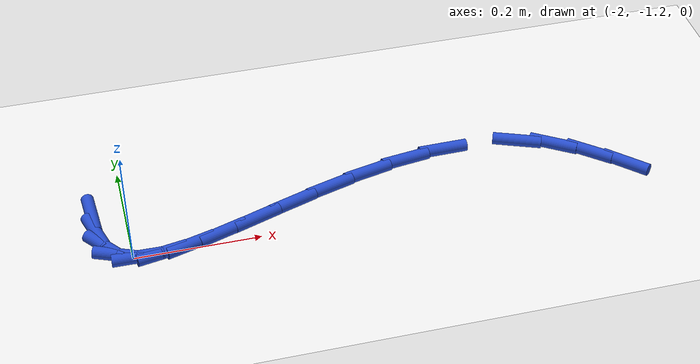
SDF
<sdf version="1.6">
 <world name="default">
  <model name="ground_plane">
   <static>1</static>
   <link name="link">
    <collision name="collision">
     <geometry><plane><normal>0 0 1</normal><size>100 100</size></plane></geometry>
     <surface><friction><ode><mu>100</mu><mu2>50</mu2></ode></friction></surface>
    </collision>
    <visual name="visual">
     <cast_shadows>0</cast_shadows>
     <geometry><plane><normal>0 0 1</normal><size>100 100</size></plane></geometry>
     <material>
      <script><uri>file://media/materials/scripts/gazebo.material</uri><name>Gazebo/WhiteGlow</name></script>
     </material>
    </visual>
   </link>
  </model>
  <model name="line">
   <link name="link_88">
    <pose>-2.050636031580349 -1.0965031979337472 0.01 0 1.57 -1.5076308698504028</pose>
    <collision name="collision">
     <geometry><cylinder><radius>0.01</radius><length>0.08</length></cylinder></geometry>
    </collision>
    <visual name="visual">
     <material>
      <script><name>Gazebo/Blue</name><uri>file://media/materials/scripts/gazebo.material</uri></script>
     </material>
     <geometry><cylinder><radius>0.01</radius><length>0.08</length></cylinder></geometry>
    </visual>
   </link>
   <link name="link_89">
    <pose>-2.0479079111940015 -1.1396358097485104 0.01 0 1.57 -1.2949432404691255</pose>
    <collision name="collision">
     <geometry><cylinder><radius>0.01</radius><length>0.08</length></cylinder></geometry>
    </collision>
    <visual name="visual">
     <material>
      <script><name>Gazebo/Blue</name><uri>file://media/materials/scripts/gazebo.material</uri></script>
     </material>
     <geometry><cylinder><radius>0.01</radius><length>0.08</length></cylinder></geometry>
    </visual>
   </link>
   <link name="link_90">
    <pose>-2.0383574839887824 -1.1733745766124646 0.01 0 1.57 -0.9160419724431071</pose>
    <collision name="collision">
     <geometry><cylinder><radius>0.01</radius><length>0.08</length></cylinder></geometry>
    </collision>
    <visual name="visual">
     <material>
      <script><name>Gazebo/Blue</name><uri>file://media/materials/scripts/gazebo.material</uri></script>
     </material>
     <geometry><cylinder><radius>0.01</radius><length>0.08</length></cylinder></geometry>
    </visual>
   </link>
   <link name="link_91">
    <pose>-2.0205552815480616 -1.1965625705804352 0.01 0 1.57 -0.39927069895030376</pose>
    <collision name="collision">
     <geometry><cylinder><radius>0.01</radius><length>0.08</length></cylinder></geometry>
    </collision>
    <visual name="visual">
     <material>
      <script><name>Gazebo/Blue</name><uri>file://media/materials/scripts/gazebo.material</uri></script>
     </material>
     <geometry><cylinder><radius>0.01</radius><length>0.08</length></cylinder></geometry>
    </visual>
   </link>
   <link name="link_92">
    <pose>-1.9931426326123498 -1.2081288941791408 0.01 0 1.57 -0.014847775576690255</pose>
    <collision name="collision">
     <geometry><cylinder><radius>0.01</radius><length>0.08</length></cylinder></geometry>
    </collision>
    <visual name="visual">
     <material>
      <script><name>Gazebo/Blue</name><uri>file://media/materials/scripts/gazebo.material</uri></script>
     </material>
     <geometry><cylinder><radius>0.01</radius><length>0.08</length></cylinder></geometry>
    </visual>
   </link>
   <link name="link_93">
    <pose>-1.9561398464917816 -1.2086783436203206 0.01 0 1.57 0.18198586436823372</pose>
    <collision name="collision">
     <geometry><cylinder><radius>0.01</radius><length>0.08</length></cylinder></geometry>
    </collision>
    <visual name="visual">
     <material>
      <script><name>Gazebo/Blue</name><uri>file://media/materials/scripts/gazebo.material</uri></script>
     </material>
     <geometry><cylinder><radius>0.01</radius><length>0.08</length></cylinder></geometry>
    </visual>
   </link>
   <link name="link_94">
    <pose>-1.9108204469783474 -1.2003385818184567 0.01 0 1.57 0.2800348995322928</pose>
    <collision name="collision">
     <geometry><cylinder><radius>0.01</radius><length>0.08</length></cylinder></geometry>
    </collision>
    <visual name="visual">
     <material>
      <script><name>Gazebo/Blue</name><uri>file://media/materials/scripts/gazebo.material</uri></script>
     </material>
     <geometry><cylinder><radius>0.01</radius><length>0.08</length></cylinder></geometry>
    </visual>
   </link>
   <link name="link_95">
    <pose>-1.8585035296682855 -1.1852926491068867 0.01 0 1.57 0.3254283040956408</pose>
    <collision name="collision">
     <geometry><cylinder><radius>0.01</radius><length>0.08</length></cylinder></geometry>
    </collision>
    <visual name="visual">
     <material>
      <script><name>Gazebo/Blue</name><uri>file://media/materials/scripts/gazebo.material</uri></script>
     </material>
     <geometry><cylinder><radius>0.01</radius><length>0.08</length></cylinder></geometry>
    </visual>
   </link>
   <link name="link_96">
    <pose>-1.800508190157837 -1.1657235858189499 0.01 0 1.57 0.33788899911484505</pose>
    <collision name="collision">
     <geometry><cylinder><radius>0.01</radius><length>0.08</length></cylinder></geometry>
    </collision>
    <visual name="visual">
     <material>
      <script><name>Gazebo/Blue</name><uri>file://media/materials/scripts/gazebo.material</uri></script>
     </material>
     <geometry><cylinder><radius>0.01</radius><length>0.08</length></cylinder></geometry>
    </visual>
   </link>
   <link name="link_97">
    <pose>-1.7381535240432426 -1.1438144322879849 0.01 0 1.57 0.3254330573580249</pose>
    <collision name="collision">
     <geometry><cylinder><radius>0.01</radius><length>0.08</length></cylinder></geometry>
    </collision>
    <visual name="visual">
     <material>
      <script><name>Gazebo/Blue</name><uri>file://media/materials/scripts/gazebo.material</uri></script>
     </material>
     <geometry><cylinder><radius>0.01</radius><length>0.08</length></cylinder></geometry>
    </visual>
   </link>
   <link name="link_98">
    <pose>-1.6727586269207408 -1.1217482288473295 0.01 0 1.57 0.2901632192983398</pose>
    <collision name="collision">
     <geometry><cylinder><radius>0.01</radius><length>0.08</length></cylinder></geometry>
    </collision>
    <visual name="visual">
     <material>
      <script><name>Gazebo/Blue</name><uri>file://media/materials/scripts/gazebo.material</uri></script>
     </material>
     <geometry><cylinder><radius>0.01</radius><length>0.08</length></cylinder></geometry>
    </visual>
   </link>
   <link name="link_99">
    <pose>-1.6056425943865724 -1.101708015830323 0.01 0 1.57 0.23031272489078133</pose>
    <collision name="collision">
     <geometry><cylinder><radius>0.01</radius><length>0.08</length></cylinder></geometry>
    </collision>
    <visual name="visual">
     <material>
      <script><name>Gazebo/Blue</name><uri>file://media/materials/scripts/gazebo.material</uri></script>
     </material>
     <geometry><cylinder><radius>0.01</radius><length>0.08</length></cylinder></geometry>
    </visual>
   </link>
   <link name="link_100">
    <pose>-1.538124522036976 -1.0858768335703026 0.01 0 1.57 0.14078858756525214</pose>
    <collision name="collision">
     <geometry><cylinder><radius>0.01</radius><length>0.08</length></cylinder></geometry>
    </collision>
    <visual name="visual">
     <material>
      <script><name>Gazebo/Blue</name><uri>file://media/materials/scripts/gazebo.material</uri></script>
     </material>
     <geometry><cylinder><radius>0.01</radius><length>0.08</length></cylinder></geometry>
    </visual>
   </link>
   <link name="link_101">
    <pose>-1.4715235054681937 -1.0764377224006079 0.01 0 1.57 0.013422662418439486</pose>
    <collision name="collision">
     <geometry><cylinder><radius>0.01</radius><length>0.08</length></cylinder></geometry>
    </collision>
    <visual name="visual">
     <material>
      <script><name>Gazebo/Blue</name><uri>file://media/materials/scripts/gazebo.material</uri></script>
     </material>
     <geometry><cylinder><radius>0.01</radius><length>0.08</length></cylinder></geometry>
    </visual>
   </link>
   <link name="link_103">
    <pose>-1.346349022058029 -1.0854678746655488 0.01 0 1.57 -0.3832897075455356</pose>
    <collision name="collision">
     <geometry><cylinder><radius>0.01</radius><length>0.08</length></cylinder></geometry>
    </collision>
    <visual name="visual">
     <material>
      <script><name>Gazebo/Blue</name><uri>file://media/materials/scripts/gazebo.material</uri></script>
     </material>
     <geometry><cylinder><radius>0.01</radius><length>0.08</length></cylinder></geometry>
    </visual>
   </link>
   <link name="link_104">
    <pose>-1.2903264238031158 -1.1080579941446016 0.01 0 1.57 -0.5827652554110312</pose>
    <collision name="collision">
     <geometry><cylinder><radius>0.01</radius><length>0.08</length></cylinder></geometry>
    </collision>
    <visual name="visual">
     <material>
      <script><name>Gazebo/Blue</name><uri>file://media/materials/scripts/gazebo.material</uri></script>
     </material>
     <geometry><cylinder><radius>0.01</radius><length>0.08</length></cylinder></geometry>
    </visual>
   </link>
   <link name="link_105">
    <pose>-1.2390925856940835 -1.141827644296358 0.01 0 1.57 -0.7121658562240869</pose>
    <collision name="collision">
     <geometry><cylinder><radius>0.01</radius><length>0.08</length></cylinder></geometry>
    </collision>
    <visual name="visual">
     <material>
      <script><name>Gazebo/Blue</name><uri>file://media/materials/scripts/gazebo.material</uri></script>
     </material>
     <geometry><cylinder><radius>0.01</radius><length>0.08</length></cylinder></geometry>
    </visual>
   </link>
   <link name="link_106">
    <pose>-1.191740061805252 -1.1827071569218497 0.01 0 1.57 -0.779278776670113</pose>
    <collision name="collision">
     <geometry><cylinder><radius>0.01</radius><length>0.08</length></cylinder></geometry>
    </collision>
    <visual name="visual">
     <material>
      <script><name>Gazebo/Blue</name><uri>file://media/materials/scripts/gazebo.material</uri></script>
     </material>
     <geometry><cylinder><radius>0.01</radius><length>0.08</length></cylinder></geometry>
    </visual>
   </link>
  </model>
 </world>
</sdf>
